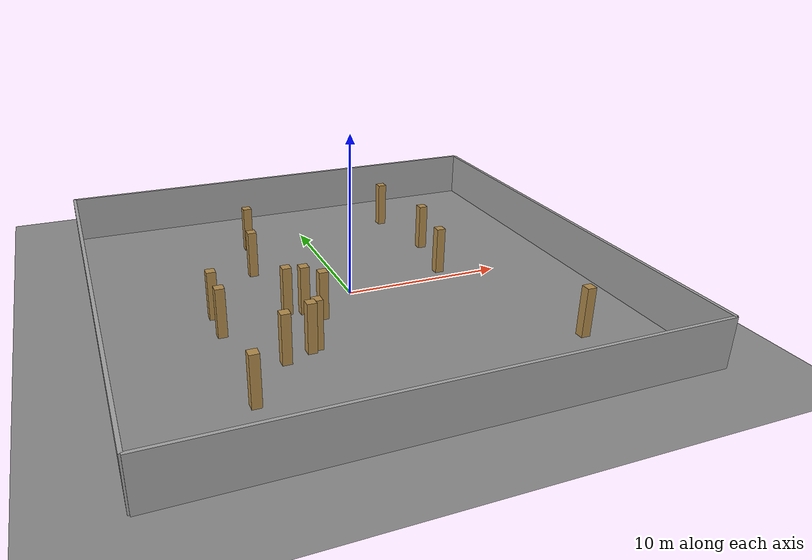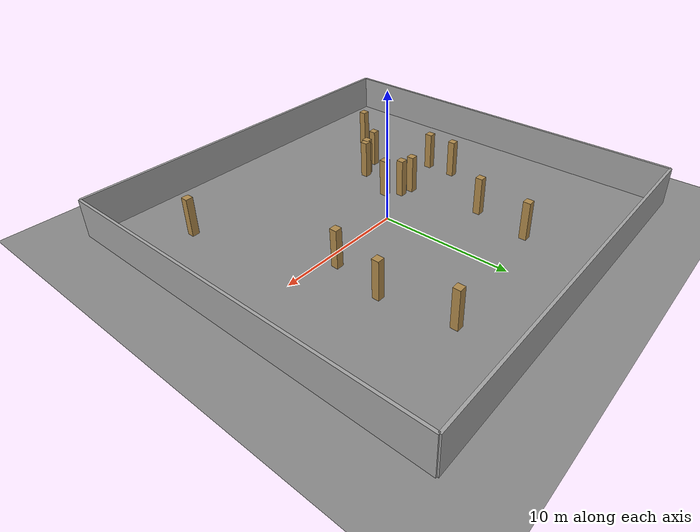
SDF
<?xml version="1.0"?>
<sdf version="1.6">
  <world name="hall_dark_high_2">
    <physics name="default_physics" type="ode">
      <real_time_update_rate>1000</real_time_update_rate>
      <max_step_size>0.001</max_step_size>
    </physics>
    <scene>
      <ambient>0.01 0.01 0.01 1</ambient>
      <background>0.08 0.09 0.12 1</background>
      <shadows>true</shadows>
    </scene>
    <light name="sun" type="directional">
      <cast_shadows>true</cast_shadows>
      <pose>0 0 20 0 0 0</pose>
      <diffuse>0.04 0.04 0.04 1.0</diffuse>
      <specular>0.04 0.04 0.04 1.0</specular>
      <direction>-0.5 0.2 -1</direction>
    </light>
    <model name="ground_plane">
      <static>true</static>
      <link name="link">
        <collision name="collision"><geometry><plane><normal>0 0 1</normal><size>100 100</size></plane></geometry></collision>
        <visual name="visual">
          <geometry><plane><normal>0 0 1</normal><size>100 100</size></plane></geometry>
          <material><ambient>0.35 0.35 0.35 1</ambient><diffuse>0.55 0.55 0.55 1</diffuse></material>
        </visual>
      </link>
    </model>

    <model name="hall_north">
      <static>true</static>
      <pose>0.0000 15.0000 1.5000 0 0 0</pose>
      <link name="link">
        <collision name="collision"><geometry><box><size>30 0.2 3</size></box></geometry></collision>
        <visual name="visual">
          <geometry><box><size>30 0.2 3</size></box></geometry>
          <material><ambient>0.65 0.65 0.65 1</ambient><diffuse>0.65 0.65 0.65 1</diffuse></material>
        </visual>
      </link>
    </model>

    <model name="hall_south">
      <static>true</static>
      <pose>0.0000 -15.0000 1.5000 0 0 0</pose>
      <link name="link">
        <collision name="collision"><geometry><box><size>30 0.2 3</size></box></geometry></collision>
        <visual name="visual">
          <geometry><box><size>30 0.2 3</size></box></geometry>
          <material><ambient>0.65 0.65 0.65 1</ambient><diffuse>0.65 0.65 0.65 1</diffuse></material>
        </visual>
      </link>
    </model>

    <model name="hall_east">
      <static>true</static>
      <pose>15.0000 0.0000 1.5000 0 0 0</pose>
      <link name="link">
        <collision name="collision"><geometry><box><size>0.2 30 3</size></box></geometry></collision>
        <visual name="visual">
          <geometry><box><size>0.2 30 3</size></box></geometry>
          <material><ambient>0.65 0.65 0.65 1</ambient><diffuse>0.65 0.65 0.65 1</diffuse></material>
        </visual>
      </link>
    </model>

    <model name="hall_west">
      <static>true</static>
      <pose>-15.0000 0.0000 1.5000 0 0 0</pose>
      <link name="link">
        <collision name="collision"><geometry><box><size>0.2 30 3</size></box></geometry></collision>
        <visual name="visual">
          <geometry><box><size>0.2 30 3</size></box></geometry>
          <material><ambient>0.65 0.65 0.65 1</ambient><diffuse>0.65 0.65 0.65 1</diffuse></material>
        </visual>
      </link>
    </model>

    <model name="hall_column_0">
      <static>true</static>
      <pose>-2.6314 -2.4229 1.5000 0 0 0</pose>
      <link name="link">
        <collision name="collision"><geometry><box><size>0.55 0.55 3</size></box></geometry></collision>
        <visual name="visual">
          <geometry><box><size>0.55 0.55 3</size></box></geometry>
          <material><ambient>0.70 0.55 0.30 1</ambient><diffuse>0.70 0.55 0.30 1</diffuse></material>
        </visual>
      </link>
    </model>

    <model name="hall_column_1">
      <static>true</static>
      <pose>-4.4502 -5.7898 1.5000 0 0 0</pose>
      <link name="link">
        <collision name="collision"><geometry><box><size>0.55 0.55 3</size></box></geometry></collision>
        <visual name="visual">
          <geometry><box><size>0.55 0.55 3</size></box></geometry>
          <material><ambient>0.70 0.55 0.30 1</ambient><diffuse>0.70 0.55 0.30 1</diffuse></material>
        </visual>
      </link>
    </model>

    <model name="hall_column_2">
      <static>true</static>
      <pose>-8.5519 -2.4032 1.5000 0 0 0</pose>
      <link name="link">
        <collision name="collision"><geometry><box><size>0.55 0.55 3</size></box></geometry></collision>
        <visual name="visual">
          <geometry><box><size>0.55 0.55 3</size></box></geometry>
          <material><ambient>0.70 0.55 0.30 1</ambient><diffuse>0.70 0.55 0.30 1</diffuse></material>
        </visual>
      </link>
    </model>

    <model name="hall_column_3">
      <static>true</static>
      <pose>-4.9287 4.7112 1.5000 0 0 0</pose>
      <link name="link">
        <collision name="collision"><geometry><box><size>0.55 0.55 3</size></box></geometry></collision>
        <visual name="visual">
          <geometry><box><size>0.55 0.55 3</size></box></geometry>
          <material><ambient>0.70 0.55 0.30 1</ambient><diffuse>0.70 0.55 0.30 1</diffuse></material>
        </visual>
      </link>
    </model>

    <model name="hall_column_4">
      <static>true</static>
      <pose>-4.1516 8.9962 1.5000 0 0 0</pose>
      <link name="link">
        <collision name="collision"><geometry><box><size>0.55 0.55 3</size></box></geometry></collision>
        <visual name="visual">
          <geometry><box><size>0.55 0.55 3</size></box></geometry>
          <material><ambient>0.70 0.55 0.30 1</ambient><diffuse>0.70 0.55 0.30 1</diffuse></material>
        </visual>
      </link>
    </model>

    <model name="hall_column_5">
      <static>true</static>
      <pose>10.2144 -9.5097 1.5000 0 0 0</pose>
      <link name="link">
        <collision name="collision"><geometry><box><size>0.55 0.55 3</size></box></geometry></collision>
        <visual name="visual">
          <geometry><box><size>0.55 0.55 3</size></box></geometry>
          <material><ambient>0.70 0.55 0.30 1</ambient><diffuse>0.70 0.55 0.30 1</diffuse></material>
        </visual>
      </link>
    </model>

    <model name="hall_column_6">
      <static>true</static>
      <pose>6.5153 0.9973 1.5000 0 0 0</pose>
      <link name="link">
        <collision name="collision"><geometry><box><size>0.55 0.55 3</size></box></geometry></collision>
        <visual name="visual">
          <geometry><box><size>0.55 0.55 3</size></box></geometry>
          <material><ambient>0.70 0.55 0.30 1</ambient><diffuse>0.70 0.55 0.30 1</diffuse></material>
        </visual>
      </link>
    </model>

    <model name="hall_column_7">
      <static>true</static>
      <pose>-4.0402 -5.5758 1.5000 0 0 0</pose>
      <link name="link">
        <collision name="collision"><geometry><box><size>0.55 0.55 3</size></box></geometry></collision>
        <visual name="visual">
          <geometry><box><size>0.55 0.55 3</size></box></geometry>
          <material><ambient>0.70 0.55 0.30 1</ambient><diffuse>0.70 0.55 0.30 1</diffuse></material>
        </visual>
      </link>
    </model>

    <model name="hall_column_8">
      <static>true</static>
      <pose>-8.5243 -9.6189 1.5000 0 0 0</pose>
      <link name="link">
        <collision name="collision"><geometry><box><size>0.55 0.55 3</size></box></geometry></collision>
        <visual name="visual">
          <geometry><box><size>0.55 0.55 3</size></box></geometry>
          <material><ambient>0.70 0.55 0.30 1</ambient><diffuse>0.70 0.55 0.30 1</diffuse></material>
        </visual>
      </link>
    </model>

    <model name="hall_column_9">
      <static>true</static>
      <pose>-3.4265 -1.4036 1.5000 0 0 0</pose>
      <link name="link">
        <collision name="collision"><geometry><box><size>0.55 0.55 3</size></box></geometry></collision>
        <visual name="visual">
          <geometry><box><size>0.55 0.55 3</size></box></geometry>
          <material><ambient>0.70 0.55 0.30 1</ambient><diffuse>0.70 0.55 0.30 1</diffuse></material>
        </visual>
      </link>
    </model>

    <model name="hall_column_10">
      <static>true</static>
      <pose>-8.5473 -0.1458 1.5000 0 0 0</pose>
      <link name="link">
        <collision name="collision"><geometry><box><size>0.55 0.55 3</size></box></geometry></collision>
        <visual name="visual">
          <geometry><box><size>0.55 0.55 3</size></box></geometry>
          <material><ambient>0.70 0.55 0.30 1</ambient><diffuse>0.70 0.55 0.30 1</diffuse></material>
        </visual>
      </link>
    </model>

    <model name="hall_column_11">
      <static>true</static>
      <pose>6.4080 10.3246 1.5000 0 0 0</pose>
      <link name="link">
        <collision name="collision"><geometry><box><size>0.55 0.55 3</size></box></geometry></collision>
        <visual name="visual">
          <geometry><box><size>0.55 0.55 3</size></box></geometry>
          <material><ambient>0.70 0.55 0.30 1</ambient><diffuse>0.70 0.55 0.30 1</diffuse></material>
        </visual>
      </link>
    </model>

    <model name="hall_column_12">
      <static>true</static>
      <pose>-4.4127 -1.1710 1.5000 0 0 0</pose>
      <link name="link">
        <collision name="collision"><geometry><box><size>0.55 0.55 3</size></box></geometry></collision>
        <visual name="visual">
          <geometry><box><size>0.55 0.55 3</size></box></geometry>
          <material><ambient>0.70 0.55 0.30 1</ambient><diffuse>0.70 0.55 0.30 1</diffuse></material>
        </visual>
      </link>
    </model>

    <model name="hall_column_13">
      <static>true</static>
      <pose>-6.0462 -6.3966 1.5000 0 0 0</pose>
      <link name="link">
        <collision name="collision"><geometry><box><size>0.55 0.55 3</size></box></geometry></collision>
        <visual name="visual">
          <geometry><box><size>0.55 0.55 3</size></box></geometry>
          <material><ambient>0.70 0.55 0.30 1</ambient><diffuse>0.70 0.55 0.30 1</diffuse></material>
        </visual>
      </link>
    </model>

    <model name="hall_column_14">
      <static>true</static>
      <pose>7.2540 5.1173 1.5000 0 0 0</pose>
      <link name="link">
        <collision name="collision"><geometry><box><size>0.55 0.55 3</size></box></geometry></collision>
        <visual name="visual">
          <geometry><box><size>0.55 0.55 3</size></box></geometry>
          <material><ambient>0.70 0.55 0.30 1</ambient><diffuse>0.70 0.55 0.30 1</diffuse></material>
        </visual>
      </link>
    </model>
  </world>
</sdf>
